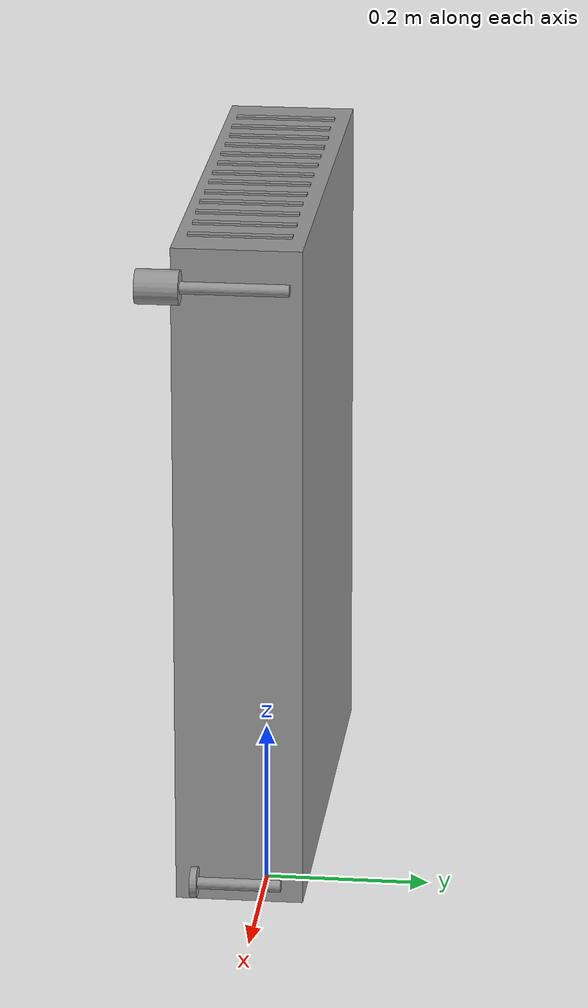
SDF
<?xml version='1.0'?>
<sdf version='1.7'>
  <model name='my_heater'>
    <link name='link'>
      <inertial>
        <mass>1</mass>
        <inertia>
          <ixx>0.166667</ixx>
          <ixy>0</ixy>
          <ixz>0</ixz>
          <iyy>0.166667</iyy>
          <iyz>0</iyz>
          <izz>0.166667</izz>
        </inertia>
        <pose>0 0 0 0 -0 0</pose>
      </inertial>
      <self_collide>0</self_collide>
      <enable_wind>0</enable_wind>
      <kinematic>0</kinematic>
      <pose>-0.005459 0 0 0 -0 0</pose>
      <gravity>1</gravity>
      <visual name='visual'>
        <geometry>
          <box>
            <size>0.6 0.15 0.8</size>
          </box>
        </geometry>
        <material>
          <script>
            <name>Gazebo/Grey</name>
            <uri>file://media/materials/scripts/gazebo.material</uri>
          </script>
          <shader type='pixel'>
            <normal_map>__default__</normal_map>
          </shader>
          <ambient>0.9 0.9 0.9 1</ambient>
          <diffuse>0.9 0.9 0.9 1</diffuse>
          <specular>0.01 0.01 0.01 1</specular>
          <emissive>0 0 0 1</emissive>
        </material>
        <pose>0 0 0.5 0 -0 0</pose>
        <transparency>0</transparency>
        <cast_shadows>1</cast_shadows>
      </visual>
      <collision name='collision'>
        <laser_retro>0</laser_retro>
        <max_contacts>10</max_contacts>
        <pose>0 0 0.5 0 -0 0</pose>
        <geometry>
          <box>
            <size>0.6 0.15 0.8</size>
          </box>
        </geometry>
        <surface>
          <friction>
            <ode>
              <mu>1</mu>
              <mu2>1</mu2>
              <fdir1>0 0 0</fdir1>
              <slip1>0</slip1>
              <slip2>0</slip2>
            </ode>
            <torsional>
              <coefficient>1</coefficient>
              <patch_radius>0</patch_radius>
              <surface_radius>0</surface_radius>
              <use_patch_radius>1</use_patch_radius>
              <ode>
                <slip>0</slip>
              </ode>
            </torsional>
          </friction>
          <bounce>
            <restitution_coefficient>0</restitution_coefficient>
            <threshold>1e+06</threshold>
          </bounce>
          <contact>
            <collide_without_contact>0</collide_without_contact>
            <collide_without_contact_bitmask>1</collide_without_contact_bitmask>
            <collide_bitmask>1</collide_bitmask>
            <ode>
              <soft_cfm>0</soft_cfm>
              <soft_erp>0.2</soft_erp>
              <kp>1e+13</kp>
              <kd>1</kd>
              <max_vel>0.01</max_vel>
              <min_depth>0</min_depth>
            </ode>
            <bullet>
              <split_impulse>1</split_impulse>
              <split_impulse_penetration_threshold>-0.01</split_impulse_penetration_threshold>
              <soft_cfm>0</soft_cfm>
              <soft_erp>0.2</soft_erp>
              <kp>1e+13</kp>
              <kd>1</kd>
            </bullet>
          </contact>
        </surface>
      </collision>
    </link>
    <link name='link_4'>
      <inertial>
        <mass>1</mass>
        <inertia>
          <ixx>0.145833</ixx>
          <ixy>0</ixy>
          <ixz>0</ixz>
          <iyy>0.145833</iyy>
          <iyz>0</iyz>
          <izz>0.125</izz>
        </inertia>
        <pose>0 0 0 0 -0 0</pose>
      </inertial>
      <pose>0.339437 -0.00976 0.367942 0 -0 0</pose>
      <gravity>1</gravity>
      <self_collide>0</self_collide>
      <kinematic>0</kinematic>
      <enable_wind>0</enable_wind>
      <visual name='visual'>
        <pose>0 0 0.5 1.5707 -0 0</pose>
        <geometry>
          <cylinder>
            <radius>0.007</radius>
            <length>0.15</length>
          </cylinder>
        </geometry>
        <material>
          <lighting>1</lighting>
          <script>
            <uri>file://media/materials/scripts/gazebo.material</uri>
            <name>Gazebo/Grey</name>
          </script>
          <shader type='pixel'>
            <normal_map>__default__</normal_map>
          </shader>
          <ambient>0.3 0.3 0.3 1</ambient>
          <diffuse>0.3 0.3 0.3 1</diffuse>
          <specular>0.01 0.01 0.01 1</specular>
          <emissive>0 0 0 1</emissive>
        </material>
        <transparency>0</transparency>
        <cast_shadows>1</cast_shadows>
      </visual>
      <collision name='collision'>
        <laser_retro>0</laser_retro>
        <max_contacts>10</max_contacts>
        <pose>0 0 0.5 1.5707 -0 0</pose>
        <geometry>
          <cylinder>
            <radius>0.007</radius>
            <length>0.15</length>
          </cylinder>
        </geometry>
        <surface>
          <friction>
            <ode>
              <mu>1</mu>
              <mu2>1</mu2>
              <fdir1>0 0 0</fdir1>
              <slip1>0</slip1>
              <slip2>0</slip2>
            </ode>
            <torsional>
              <coefficient>1</coefficient>
              <patch_radius>0</patch_radius>
              <surface_radius>0</surface_radius>
              <use_patch_radius>1</use_patch_radius>
              <ode>
                <slip>0</slip>
              </ode>
            </torsional>
          </friction>
          <bounce>
            <restitution_coefficient>0</restitution_coefficient>
            <threshold>1e+06</threshold>
          </bounce>
          <contact>
            <collide_without_contact>0</collide_without_contact>
            <collide_without_contact_bitmask>1</collide_without_contact_bitmask>
            <collide_bitmask>1</collide_bitmask>
            <ode>
              <soft_cfm>0</soft_cfm>
              <soft_erp>0.2</soft_erp>
              <kp>1e+13</kp>
              <kd>1</kd>
              <max_vel>0.01</max_vel>
              <min_depth>0</min_depth>
            </ode>
            <bullet>
              <split_impulse>1</split_impulse>
              <split_impulse_penetration_threshold>-0.01</split_impulse_penetration_threshold>
              <soft_cfm>0</soft_cfm>
              <soft_erp>0.2</soft_erp>
              <kp>1e+13</kp>
              <kd>1</kd>
            </bullet>
          </contact>
        </surface>
      </collision>
    </link>
    <link name='link_4_clone'>
      <inertial>
        <mass>1</mass>
        <inertia>
          <ixx>0.145833</ixx>
          <ixy>0</ixy>
          <ixz>0</ixz>
          <iyy>0.145833</iyy>
          <iyz>0</iyz>
          <izz>0.125</izz>
        </inertia>
        <pose>0 0 0 0 -0 0</pose>
      </inertial>
      <pose>0.338807 -0.083548 0.367942 0 -0 0</pose>
      <gravity>0</gravity>
      <self_collide>0</self_collide>
      <kinematic>0</kinematic>
      <enable_wind>0</enable_wind>
      <visual name='visual'>
        <pose>0 0 0.5 1.5707 -0 0</pose>
        <geometry>
          <cylinder>
            <radius>0.02</radius>
            <length>0.05</length>
          </cylinder>
        </geometry>
        <material>
          <lighting>1</lighting>
          <script>
            <uri>file://media/materials/scripts/gazebo.material</uri>
            <name>Gazebo/Grey</name>
          </script>
          <shader type='pixel'>
            <normal_map>__default__</normal_map>
          </shader>
          <ambient>0.9 0.9 0.9 1</ambient>
          <diffuse>0.9 0.9 0.9 1</diffuse>
          <specular>0.01 0.01 0.01 1</specular>
          <emissive>0 0 0 1</emissive>
        </material>
        <transparency>0</transparency>
        <cast_shadows>1</cast_shadows>
      </visual>
      <collision name='collision'>
        <laser_retro>0</laser_retro>
        <max_contacts>10</max_contacts>
        <pose>0 0 0.5 1.5707 -0 0</pose>
        <geometry>
          <cylinder>
            <radius>0.02</radius>
            <length>0.05</length>
          </cylinder>
        </geometry>
        <surface>
          <friction>
            <ode>
              <mu>1</mu>
              <mu2>1</mu2>
              <fdir1>0 0 0</fdir1>
              <slip1>0</slip1>
              <slip2>0</slip2>
            </ode>
            <torsional>
              <coefficient>1</coefficient>
              <patch_radius>0</patch_radius>
              <surface_radius>0</surface_radius>
              <use_patch_radius>1</use_patch_radius>
              <ode>
                <slip>0</slip>
              </ode>
            </torsional>
          </friction>
          <bounce>
            <restitution_coefficient>0</restitution_coefficient>
            <threshold>1e+06</threshold>
          </bounce>
          <contact>
            <collide_without_contact>0</collide_without_contact>
            <collide_without_contact_bitmask>1</collide_without_contact_bitmask>
            <collide_bitmask>1</collide_bitmask>
            <ode>
              <soft_cfm>0</soft_cfm>
              <soft_erp>0.2</soft_erp>
              <kp>1e+13</kp>
              <kd>1</kd>
              <max_vel>0.01</max_vel>
              <min_depth>0</min_depth>
            </ode>
            <bullet>
              <split_impulse>1</split_impulse>
              <split_impulse_penetration_threshold>-0.01</split_impulse_penetration_threshold>
              <soft_cfm>0</soft_cfm>
              <soft_erp>0.2</soft_erp>
              <kp>1e+13</kp>
              <kd>1</kd>
            </bullet>
          </contact>
        </surface>
      </collision>
    </link>
    <link name='link_4_clone_0'>
      <inertial>
        <mass>1</mass>
        <inertia>
          <ixx>0.145833</ixx>
          <ixy>0</ixy>
          <ixz>0</ixz>
          <iyy>0.145833</iyy>
          <iyz>0</iyz>
          <izz>0.125</izz>
        </inertia>
        <pose>0 0 0 0 -0 0</pose>
      </inertial>
      <pose>0.334138 0.003511 -0.362073 0 -0 0</pose>
      <gravity>1</gravity>
      <self_collide>0</self_collide>
      <kinematic>0</kinematic>
      <enable_wind>0</enable_wind>
      <visual name='visual'>
        <pose>0 0 0.5 1.5707 -0 0</pose>
        <geometry>
          <cylinder>
            <radius>0.007</radius>
            <length>0.1</length>
          </cylinder>
        </geometry>
        <material>
          <lighting>1</lighting>
          <script>
            <uri>file://media/materials/scripts/gazebo.material</uri>
            <name>Gazebo/Grey</name>
          </script>
          <shader type='pixel'>
            <normal_map>__default__</normal_map>
          </shader>
          <ambient>0.3 0.3 0.3 1</ambient>
          <diffuse>0.3 0.3 0.3 1</diffuse>
          <specular>0.01 0.01 0.01 1</specular>
          <emissive>0 0 0 1</emissive>
        </material>
        <transparency>0</transparency>
        <cast_shadows>1</cast_shadows>
      </visual>
      <collision name='collision'>
        <laser_retro>0</laser_retro>
        <max_contacts>10</max_contacts>
        <pose>0 0 0.5 1.5707 -0 0</pose>
        <geometry>
          <cylinder>
            <radius>0.008</radius>
            <length>0.08</length>
          </cylinder>
        </geometry>
        <surface>
          <friction>
            <ode>
              <mu>1</mu>
              <mu2>1</mu2>
              <fdir1>0 0 0</fdir1>
              <slip1>0</slip1>
              <slip2>0</slip2>
            </ode>
            <torsional>
              <coefficient>1</coefficient>
              <patch_radius>0</patch_radius>
              <surface_radius>0</surface_radius>
              <use_patch_radius>1</use_patch_radius>
              <ode>
                <slip>0</slip>
              </ode>
            </torsional>
          </friction>
          <bounce>
            <restitution_coefficient>0</restitution_coefficient>
            <threshold>1e+06</threshold>
          </bounce>
          <contact>
            <collide_without_contact>0</collide_without_contact>
            <collide_without_contact_bitmask>1</collide_without_contact_bitmask>
            <collide_bitmask>1</collide_bitmask>
            <ode>
              <soft_cfm>0</soft_cfm>
              <soft_erp>0.2</soft_erp>
              <kp>1e+13</kp>
              <kd>1</kd>
              <max_vel>0.01</max_vel>
              <min_depth>0</min_depth>
            </ode>
            <bullet>
              <split_impulse>1</split_impulse>
              <split_impulse_penetration_threshold>-0.01</split_impulse_penetration_threshold>
              <soft_cfm>0</soft_cfm>
              <soft_erp>0.2</soft_erp>
              <kp>1e+13</kp>
              <kd>1</kd>
            </bullet>
          </contact>
        </surface>
      </collision>
    </link>
    <link name='link_4_clone_1'>
      <inertial>
        <mass>1</mass>
        <inertia>
          <ixx>0.145833</ixx>
          <ixy>0</ixy>
          <ixz>0</ixz>
          <iyy>0.145833</iyy>
          <iyz>0</iyz>
          <izz>0.125</izz>
        </inertia>
        <pose>0 0 0 0 -0 0</pose>
      </inertial>
      <pose>0.334332 -0.048218 -0.360984 0 -0 0</pose>
      <gravity>1</gravity>
      <self_collide>0</self_collide>
      <kinematic>0</kinematic>
      <enable_wind>0</enable_wind>
      <visual name='visual'>
        <pose>0 0 0.5 1.5707 -0 0</pose>
        <geometry>
          <cylinder>
            <radius>0.018</radius>
            <length>0.008</length>
          </cylinder>
        </geometry>
        <material>
          <lighting>1</lighting>
          <script>
            <uri>file://media/materials/scripts/gazebo.material</uri>
            <name>Gazebo/Grey</name>
          </script>
          <shader type='pixel'>
            <normal_map>__default__</normal_map>
          </shader>
          <ambient>0.3 0.3 0.3 1</ambient>
          <diffuse>0.3 0.3 0.3 1</diffuse>
          <specular>0.01 0.01 0.01 1</specular>
          <emissive>0 0 0 1</emissive>
        </material>
        <transparency>0</transparency>
        <cast_shadows>1</cast_shadows>
      </visual>
      <collision name='collision'>
        <laser_retro>0</laser_retro>
        <max_contacts>10</max_contacts>
        <pose>0 0 0.5 1.5707 -0 0</pose>
        <geometry>
          <cylinder>
            <radius>0.018</radius>
            <length>0.01</length>
          </cylinder>
        </geometry>
        <surface>
          <friction>
            <ode>
              <mu>1</mu>
              <mu2>1</mu2>
              <fdir1>0 0 0</fdir1>
              <slip1>0</slip1>
              <slip2>0</slip2>
            </ode>
            <torsional>
              <coefficient>1</coefficient>
              <patch_radius>0</patch_radius>
              <surface_radius>0</surface_radius>
              <use_patch_radius>1</use_patch_radius>
              <ode>
                <slip>0</slip>
              </ode>
            </torsional>
          </friction>
          <bounce>
            <restitution_coefficient>0</restitution_coefficient>
            <threshold>1e+06</threshold>
          </bounce>
          <contact>
            <collide_without_contact>0</collide_without_contact>
            <collide_without_contact_bitmask>1</collide_without_contact_bitmask>
            <collide_bitmask>1</collide_bitmask>
            <ode>
              <soft_cfm>0</soft_cfm>
              <soft_erp>0.2</soft_erp>
              <kp>1e+13</kp>
              <kd>1</kd>
              <max_vel>0.01</max_vel>
              <min_depth>0</min_depth>
            </ode>
            <bullet>
              <split_impulse>1</split_impulse>
              <split_impulse_penetration_threshold>-0.01</split_impulse_penetration_threshold>
              <soft_cfm>0</soft_cfm>
              <soft_erp>0.2</soft_erp>
              <kp>1e+13</kp>
              <kd>1</kd>
            </bullet>
          </contact>
        </surface>
      </collision>
    </link>
    <link name='link_clone'>
      <inertial>
        <mass>1</mass>
        <inertia>
          <ixx>0.166667</ixx>
          <ixy>0</ixy>
          <ixz>0</ixz>
          <iyy>0.166667</iyy>
          <iyz>0</iyz>
          <izz>0.166667</izz>
        </inertia>
        <pose>0 0 0 0 -0 0</pose>
      </inertial>
      <self_collide>0</self_collide>
      <enable_wind>0</enable_wind>
      <kinematic>0</kinematic>
      <pose>-0.008101 -0.003197 -0 0 -0 0</pose>
      <gravity>0</gravity>
      <visual name='visual'>
        <geometry>
          <box>
            <size>0.01 0.12 0.005</size>
          </box>
        </geometry>
        <material>
          <script>
            <name>Gazebo/Grey</name>
            <uri>file://media/materials/scripts/gazebo.material</uri>
          </script>
          <shader type='pixel'>
            <normal_map>__default__</normal_map>
          </shader>
          <ambient>0.2 0.2 0.2 1</ambient>
          <diffuse>0.2 0.2 0.2 1</diffuse>
          <specular>0.01 0.01 0.01 1</specular>
          <emissive>0 0 0 1</emissive>
        </material>
        <pose>0 0 0.9 0 -0 0</pose>
        <transparency>0</transparency>
        <cast_shadows>1</cast_shadows>
      </visual>
      <collision name='collision'>
        <laser_retro>0</laser_retro>
        <max_contacts>10</max_contacts>
        <pose>0 0 0.9 0 -0 0</pose>
        <geometry>
          <box>
            <size>0.01 0.12 0.005</size>
          </box>
        </geometry>
        <surface>
          <friction>
            <ode>
              <mu>1</mu>
              <mu2>1</mu2>
              <fdir1>0 0 0</fdir1>
              <slip1>0</slip1>
              <slip2>0</slip2>
            </ode>
            <torsional>
              <coefficient>1</coefficient>
              <patch_radius>0</patch_radius>
              <surface_radius>0</surface_radius>
              <use_patch_radius>1</use_patch_radius>
              <ode>
                <slip>0</slip>
              </ode>
            </torsional>
          </friction>
          <bounce>
            <restitution_coefficient>0</restitution_coefficient>
            <threshold>1e+06</threshold>
          </bounce>
          <contact>
            <collide_without_contact>0</collide_without_contact>
            <collide_without_contact_bitmask>1</collide_without_contact_bitmask>
            <collide_bitmask>1</collide_bitmask>
            <ode>
              <soft_cfm>0</soft_cfm>
              <soft_erp>0.2</soft_erp>
              <kp>1e+13</kp>
              <kd>1</kd>
              <max_vel>0.01</max_vel>
              <min_depth>0</min_depth>
            </ode>
            <bullet>
              <split_impulse>1</split_impulse>
              <split_impulse_penetration_threshold>-0.01</split_impulse_penetration_threshold>
              <soft_cfm>0</soft_cfm>
              <soft_erp>0.2</soft_erp>
              <kp>1e+13</kp>
              <kd>1</kd>
            </bullet>
          </contact>
        </surface>
      </collision>
    </link>
    <link name='link_clone_clone'>
      <inertial>
        <mass>1</mass>
        <inertia>
          <ixx>0.166667</ixx>
          <ixy>0</ixy>
          <ixz>0</ixz>
          <iyy>0.166667</iyy>
          <iyz>0</iyz>
          <izz>0.166667</izz>
        </inertia>
        <pose>0 0 0 0 -0 0</pose>
      </inertial>
      <self_collide>0</self_collide>
      <enable_wind>0</enable_wind>
      <kinematic>0</kinematic>
      <pose>0.030621 -0.003096 -0 0 -0 0</pose>
      <gravity>0</gravity>
      <visual name='visual'>
        <geometry>
          <box>
            <size>0.01 0.12 0.005</size>
          </box>
        </geometry>
        <material>
          <script>
            <name>Gazebo/Grey</name>
            <uri>file://media/materials/scripts/gazebo.material</uri>
          </script>
          <shader type='pixel'>
            <normal_map>__default__</normal_map>
          </shader>
          <ambient>0.2 0.2 0.2 1</ambient>
          <diffuse>0.2 0.2 0.2 1</diffuse>
          <specular>0.01 0.01 0.01 1</specular>
          <emissive>0 0 0 1</emissive>
        </material>
        <pose>0 0 0.9 0 -0 0</pose>
        <transparency>0</transparency>
        <cast_shadows>1</cast_shadows>
      </visual>
      <collision name='collision'>
        <laser_retro>0</laser_retro>
        <max_contacts>10</max_contacts>
        <pose>0 0 0.9 0 -0 0</pose>
        <geometry>
          <box>
            <size>0.01 0.12 0.005</size>
          </box>
        </geometry>
        <surface>
          <friction>
            <ode>
              <mu>1</mu>
              <mu2>1</mu2>
              <fdir1>0 0 0</fdir1>
              <slip1>0</slip1>
              <slip2>0</slip2>
            </ode>
            <torsional>
              <coefficient>1</coefficient>
              <patch_radius>0</patch_radius>
              <surface_radius>0</surface_radius>
              <use_patch_radius>1</use_patch_radius>
              <ode>
                <slip>0</slip>
              </ode>
            </torsional>
          </friction>
          <bounce>
            <restitution_coefficient>0</restitution_coefficient>
            <threshold>1e+06</threshold>
          </bounce>
          <contact>
            <collide_without_contact>0</collide_without_contact>
            <collide_without_contact_bitmask>1</collide_without_contact_bitmask>
            <collide_bitmask>1</collide_bitmask>
            <ode>
              <soft_cfm>0</soft_cfm>
              <soft_erp>0.2</soft_erp>
              <kp>1e+13</kp>
              <kd>1</kd>
              <max_vel>0.01</max_vel>
              <min_depth>0</min_depth>
            </ode>
            <bullet>
              <split_impulse>1</split_impulse>
              <split_impulse_penetration_threshold>-0.01</split_impulse_penetration_threshold>
              <soft_cfm>0</soft_cfm>
              <soft_erp>0.2</soft_erp>
              <kp>1e+13</kp>
              <kd>1</kd>
            </bullet>
          </contact>
        </surface>
      </collision>
    </link>
    <link name='link_clone_clone_0'>
      <inertial>
        <mass>1</mass>
        <inertia>
          <ixx>0.166667</ixx>
          <ixy>0</ixy>
          <ixz>0</ixz>
          <iyy>0.166667</iyy>
          <iyz>0</iyz>
          <izz>0.166667</izz>
        </inertia>
        <pose>0 0 0 0 -0 0</pose>
      </inertial>
      <self_collide>0</self_collide>
      <enable_wind>0</enable_wind>
      <kinematic>0</kinematic>
      <pose>-0.127469 -0.002742 0 0 -0 0</pose>
      <gravity>0</gravity>
      <visual name='visual'>
        <geometry>
          <box>
            <size>0.01 0.12 0.005</size>
          </box>
        </geometry>
        <material>
          <script>
            <name>Gazebo/Grey</name>
            <uri>file://media/materials/scripts/gazebo.material</uri>
          </script>
          <shader type='pixel'>
            <normal_map>__default__</normal_map>
          </shader>
          <ambient>0.2 0.2 0.2 1</ambient>
          <diffuse>0.2 0.2 0.2 1</diffuse>
          <specular>0.01 0.01 0.01 1</specular>
          <emissive>0 0 0 1</emissive>
        </material>
        <pose>0 0 0.9 0 -0 0</pose>
        <transparency>0</transparency>
        <cast_shadows>1</cast_shadows>
      </visual>
      <collision name='collision'>
        <laser_retro>0</laser_retro>
        <max_contacts>10</max_contacts>
        <pose>0 0 0.9 0 -0 0</pose>
        <geometry>
          <box>
            <size>0.01 0.12 0.005</size>
          </box>
        </geometry>
        <surface>
          <friction>
            <ode>
              <mu>1</mu>
              <mu2>1</mu2>
              <fdir1>0 0 0</fdir1>
              <slip1>0</slip1>
              <slip2>0</slip2>
            </ode>
            <torsional>
              <coefficient>1</coefficient>
              <patch_radius>0</patch_radius>
              <surface_radius>0</surface_radius>
              <use_patch_radius>1</use_patch_radius>
              <ode>
                <slip>0</slip>
              </ode>
            </torsional>
          </friction>
          <bounce>
            <restitution_coefficient>0</restitution_coefficient>
            <threshold>1e+06</threshold>
          </bounce>
          <contact>
            <collide_without_contact>0</collide_without_contact>
            <collide_without_contact_bitmask>1</collide_without_contact_bitmask>
            <collide_bitmask>1</collide_bitmask>
            <ode>
              <soft_cfm>0</soft_cfm>
              <soft_erp>0.2</soft_erp>
              <kp>1e+13</kp>
              <kd>1</kd>
              <max_vel>0.01</max_vel>
              <min_depth>0</min_depth>
            </ode>
            <bullet>
              <split_impulse>1</split_impulse>
              <split_impulse_penetration_threshold>-0.01</split_impulse_penetration_threshold>
              <soft_cfm>0</soft_cfm>
              <soft_erp>0.2</soft_erp>
              <kp>1e+13</kp>
              <kd>1</kd>
            </bullet>
          </contact>
        </surface>
      </collision>
    </link>
    <link name='link_clone_clone_1'>
      <inertial>
        <mass>1</mass>
        <inertia>
          <ixx>0.166667</ixx>
          <ixy>0</ixy>
          <ixz>0</ixz>
          <iyy>0.166667</iyy>
          <iyz>0</iyz>
          <izz>0.166667</izz>
        </inertia>
        <pose>0 0 0 0 -0 0</pose>
      </inertial>
      <self_collide>0</self_collide>
      <enable_wind>0</enable_wind>
      <kinematic>0</kinematic>
      <pose>-0.04814 -0.002331 -0 0 -0 0</pose>
      <gravity>0</gravity>
      <visual name='visual'>
        <geometry>
          <box>
            <size>0.01 0.12 0.005</size>
          </box>
        </geometry>
        <material>
          <script>
            <name>Gazebo/Grey</name>
            <uri>file://media/materials/scripts/gazebo.material</uri>
          </script>
          <shader type='pixel'>
            <normal_map>__default__</normal_map>
          </shader>
          <ambient>0.2 0.2 0.2 1</ambient>
          <diffuse>0.2 0.2 0.2 1</diffuse>
          <specular>0.01 0.01 0.01 1</specular>
          <emissive>0 0 0 1</emissive>
        </material>
        <pose>0 0 0.9 0 -0 0</pose>
        <transparency>0</transparency>
        <cast_shadows>1</cast_shadows>
      </visual>
      <collision name='collision'>
        <laser_retro>0</laser_retro>
        <max_contacts>10</max_contacts>
        <pose>0 0 0.9 0 -0 0</pose>
        <geometry>
          <box>
            <size>0.01 0.12 0.005</size>
          </box>
        </geometry>
        <surface>
          <friction>
            <ode>
              <mu>1</mu>
              <mu2>1</mu2>
              <fdir1>0 0 0</fdir1>
              <slip1>0</slip1>
              <slip2>0</slip2>
            </ode>
            <torsional>
              <coefficient>1</coefficient>
              <patch_radius>0</patch_radius>
              <surface_radius>0</surface_radius>
              <use_patch_radius>1</use_patch_radius>
              <ode>
                <slip>0</slip>
              </ode>
            </torsional>
          </friction>
          <bounce>
            <restitution_coefficient>0</restitution_coefficient>
            <threshold>1e+06</threshold>
          </bounce>
          <contact>
            <collide_without_contact>0</collide_without_contact>
            <collide_without_contact_bitmask>1</collide_without_contact_bitmask>
            <collide_bitmask>1</collide_bitmask>
            <ode>
              <soft_cfm>0</soft_cfm>
              <soft_erp>0.2</soft_erp>
              <kp>1e+13</kp>
              <kd>1</kd>
              <max_vel>0.01</max_vel>
              <min_depth>0</min_depth>
            </ode>
            <bullet>
              <split_impulse>1</split_impulse>
              <split_impulse_penetration_threshold>-0.01</split_impulse_penetration_threshold>
              <soft_cfm>0</soft_cfm>
              <soft_erp>0.2</soft_erp>
              <kp>1e+13</kp>
              <kd>1</kd>
            </bullet>
          </contact>
        </surface>
      </collision>
    </link>
    <link name='link_clone_clone_2'>
      <inertial>
        <mass>1</mass>
        <inertia>
          <ixx>0.166667</ixx>
          <ixy>0</ixy>
          <ixz>0</ixz>
          <iyy>0.166667</iyy>
          <iyz>0</iyz>
          <izz>0.166667</izz>
        </inertia>
        <pose>0 0 0 0 -0 0</pose>
      </inertial>
      <self_collide>0</self_collide>
      <enable_wind>0</enable_wind>
      <kinematic>0</kinematic>
      <pose>-0.087785 -0.003069 0 0 -0 0</pose>
      <gravity>0</gravity>
      <visual name='visual'>
        <geometry>
          <box>
            <size>0.01 0.12 0.005</size>
          </box>
        </geometry>
        <material>
          <script>
            <name>Gazebo/Grey</name>
            <uri>file://media/materials/scripts/gazebo.material</uri>
          </script>
          <shader type='pixel'>
            <normal_map>__default__</normal_map>
          </shader>
          <ambient>0.2 0.2 0.2 1</ambient>
          <diffuse>0.2 0.2 0.2 1</diffuse>
          <specular>0.01 0.01 0.01 1</specular>
          <emissive>0 0 0 1</emissive>
        </material>
        <pose>0 0 0.9 0 -0 0</pose>
        <transparency>0</transparency>
        <cast_shadows>1</cast_shadows>
      </visual>
      <collision name='collision'>
        <laser_retro>0</laser_retro>
        <max_contacts>10</max_contacts>
        <pose>0 0 0.9 0 -0 0</pose>
        <geometry>
          <box>
            <size>0.01 0.12 0.005</size>
          </box>
        </geometry>
        <surface>
          <friction>
            <ode>
              <mu>1</mu>
              <mu2>1</mu2>
              <fdir1>0 0 0</fdir1>
              <slip1>0</slip1>
              <slip2>0</slip2>
            </ode>
            <torsional>
              <coefficient>1</coefficient>
              <patch_radius>0</patch_radius>
              <surface_radius>0</surface_radius>
              <use_patch_radius>1</use_patch_radius>
              <ode>
                <slip>0</slip>
              </ode>
            </torsional>
          </friction>
          <bounce>
            <restitution_coefficient>0</restitution_coefficient>
            <threshold>1e+06</threshold>
          </bounce>
          <contact>
            <collide_without_contact>0</collide_without_contact>
            <collide_without_contact_bitmask>1</collide_without_contact_bitmask>
            <collide_bitmask>1</collide_bitmask>
            <ode>
              <soft_cfm>0</soft_cfm>
              <soft_erp>0.2</soft_erp>
              <kp>1e+13</kp>
              <kd>1</kd>
              <max_vel>0.01</max_vel>
              <min_depth>0</min_depth>
            </ode>
            <bullet>
              <split_impulse>1</split_impulse>
              <split_impulse_penetration_threshold>-0.01</split_impulse_penetration_threshold>
              <soft_cfm>0</soft_cfm>
              <soft_erp>0.2</soft_erp>
              <kp>1e+13</kp>
              <kd>1</kd>
            </bullet>
          </contact>
        </surface>
      </collision>
    </link>
    <link name='link_clone_clone_3'>
      <inertial>
        <mass>1</mass>
        <inertia>
          <ixx>0.166667</ixx>
          <ixy>0</ixy>
          <ixz>0</ixz>
          <iyy>0.166667</iyy>
          <iyz>0</iyz>
          <izz>0.166667</izz>
        </inertia>
        <pose>0 0 0 0 -0 0</pose>
      </inertial>
      <self_collide>0</self_collide>
      <enable_wind>0</enable_wind>
      <kinematic>0</kinematic>
      <pose>-0.16726 -0.001899 -0 0 -0 0</pose>
      <gravity>0</gravity>
      <visual name='visual'>
        <geometry>
          <box>
            <size>0.01 0.12 0.005</size>
          </box>
        </geometry>
        <material>
          <script>
            <name>Gazebo/Grey</name>
            <uri>file://media/materials/scripts/gazebo.material</uri>
          </script>
          <shader type='pixel'>
            <normal_map>__default__</normal_map>
          </shader>
          <ambient>0.2 0.2 0.2 1</ambient>
          <diffuse>0.2 0.2 0.2 1</diffuse>
          <specular>0.01 0.01 0.01 1</specular>
          <emissive>0 0 0 1</emissive>
        </material>
        <pose>0 0 0.9 0 -0 0</pose>
        <transparency>0</transparency>
        <cast_shadows>1</cast_shadows>
      </visual>
      <collision name='collision'>
        <laser_retro>0</laser_retro>
        <max_contacts>10</max_contacts>
        <pose>0 0 0.9 0 -0 0</pose>
        <geometry>
          <box>
            <size>0.01 0.12 0.005</size>
          </box>
        </geometry>
        <surface>
          <friction>
            <ode>
              <mu>1</mu>
              <mu2>1</mu2>
              <fdir1>0 0 0</fdir1>
              <slip1>0</slip1>
              <slip2>0</slip2>
            </ode>
            <torsional>
              <coefficient>1</coefficient>
              <patch_radius>0</patch_radius>
              <surface_radius>0</surface_radius>
              <use_patch_radius>1</use_patch_radius>
              <ode>
                <slip>0</slip>
              </ode>
            </torsional>
          </friction>
          <bounce>
            <restitution_coefficient>0</restitution_coefficient>
            <threshold>1e+06</threshold>
          </bounce>
          <contact>
            <collide_without_contact>0</collide_without_contact>
            <collide_without_contact_bitmask>1</collide_without_contact_bitmask>
            <collide_bitmask>1</collide_bitmask>
            <ode>
              <soft_cfm>0</soft_cfm>
              <soft_erp>0.2</soft_erp>
              <kp>1e+13</kp>
              <kd>1</kd>
              <max_vel>0.01</max_vel>
              <min_depth>0</min_depth>
            </ode>
            <bullet>
              <split_impulse>1</split_impulse>
              <split_impulse_penetration_threshold>-0.01</split_impulse_penetration_threshold>
              <soft_cfm>0</soft_cfm>
              <soft_erp>0.2</soft_erp>
              <kp>1e+13</kp>
              <kd>1</kd>
            </bullet>
          </contact>
        </surface>
      </collision>
    </link>
    <link name='link_clone_clone_3_clone'>
      <inertial>
        <mass>1</mass>
        <inertia>
          <ixx>0.166667</ixx>
          <ixy>0</ixy>
          <ixz>0</ixz>
          <iyy>0.166667</iyy>
          <iyz>0</iyz>
          <izz>0.166667</izz>
        </inertia>
        <pose>0 0 0 0 -0 0</pose>
      </inertial>
      <self_collide>0</self_collide>
      <enable_wind>0</enable_wind>
      <kinematic>0</kinematic>
      <pose>-0.208169 -0.004009 0 0 -0 0</pose>
      <gravity>0</gravity>
      <visual name='visual'>
        <geometry>
          <box>
            <size>0.01 0.12 0.005</size>
          </box>
        </geometry>
        <material>
          <script>
            <name>Gazebo/Grey</name>
            <uri>file://media/materials/scripts/gazebo.material</uri>
          </script>
          <shader type='pixel'>
            <normal_map>__default__</normal_map>
          </shader>
          <ambient>0.2 0.2 0.2 1</ambient>
          <diffuse>0.2 0.2 0.2 1</diffuse>
          <specular>0.01 0.01 0.01 1</specular>
          <emissive>0 0 0 1</emissive>
        </material>
        <pose>0 0 0.9 0 -0 0</pose>
        <transparency>0</transparency>
        <cast_shadows>1</cast_shadows>
      </visual>
      <collision name='collision'>
        <laser_retro>0</laser_retro>
        <max_contacts>10</max_contacts>
        <pose>0 0 0.9 0 -0 0</pose>
        <geometry>
          <box>
            <size>0.01 0.12 0.005</size>
          </box>
        </geometry>
        <surface>
          <friction>
            <ode>
              <mu>1</mu>
              <mu2>1</mu2>
              <fdir1>0 0 0</fdir1>
              <slip1>0</slip1>
              <slip2>0</slip2>
            </ode>
            <torsional>
              <coefficient>1</coefficient>
              <patch_radius>0</patch_radius>
              <surface_radius>0</surface_radius>
              <use_patch_radius>1</use_patch_radius>
              <ode>
                <slip>0</slip>
              </ode>
            </torsional>
          </friction>
          <bounce>
            <restitution_coefficient>0</restitution_coefficient>
            <threshold>1e+06</threshold>
          </bounce>
          <contact>
            <collide_without_contact>0</collide_without_contact>
            <collide_without_contact_bitmask>1</collide_without_contact_bitmask>
            <collide_bitmask>1</collide_bitmask>
            <ode>
              <soft_cfm>0</soft_cfm>
              <soft_erp>0.2</soft_erp>
              <kp>1e+13</kp>
              <kd>1</kd>
              <max_vel>0.01</max_vel>
              <min_depth>0</min_depth>
            </ode>
            <bullet>
              <split_impulse>1</split_impulse>
              <split_impulse_penetration_threshold>-0.01</split_impulse_penetration_threshold>
              <soft_cfm>0</soft_cfm>
              <soft_erp>0.2</soft_erp>
              <kp>1e+13</kp>
              <kd>1</kd>
            </bullet>
          </contact>
        </surface>
      </collision>
    </link>
    <link name='link_clone_clone_3_clone_clone'>
      <inertial>
        <mass>1</mass>
        <inertia>
          <ixx>0.166667</ixx>
          <ixy>0</ixy>
          <ixz>0</ixz>
          <iyy>0.166667</iyy>
          <iyz>0</iyz>
          <izz>0.166667</izz>
        </inertia>
        <pose>0 0 0 0 -0 0</pose>
      </inertial>
      <self_collide>0</self_collide>
      <enable_wind>0</enable_wind>
      <kinematic>0</kinematic>
      <pose>-0.251481 -0.002582 -0 0 -0 0</pose>
      <gravity>0</gravity>
      <visual name='visual'>
        <geometry>
          <box>
            <size>0.01 0.12 0.005</size>
          </box>
        </geometry>
        <material>
          <script>
            <name>Gazebo/Grey</name>
            <uri>file://media/materials/scripts/gazebo.material</uri>
          </script>
          <shader type='pixel'>
            <normal_map>__default__</normal_map>
          </shader>
          <ambient>0.2 0.2 0.2 1</ambient>
          <diffuse>0.2 0.2 0.2 1</diffuse>
          <specular>0.01 0.01 0.01 1</specular>
          <emissive>0 0 0 1</emissive>
        </material>
        <pose>0 0 0.9 0 -0 0</pose>
        <transparency>0</transparency>
        <cast_shadows>1</cast_shadows>
      </visual>
      <collision name='collision'>
        <laser_retro>0</laser_retro>
        <max_contacts>10</max_contacts>
        <pose>0 0 0.9 0 -0 0</pose>
        <geometry>
          <box>
            <size>0.01 0.12 0.005</size>
          </box>
        </geometry>
        <surface>
          <friction>
            <ode>
              <mu>1</mu>
              <mu2>1</mu2>
              <fdir1>0 0 0</fdir1>
              <slip1>0</slip1>
              <slip2>0</slip2>
            </ode>
            <torsional>
              <coefficient>1</coefficient>
              <patch_radius>0</patch_radius>
              <surface_radius>0</surface_radius>
              <use_patch_radius>1</use_patch_radius>
              <ode>
                <slip>0</slip>
              </ode>
            </torsional>
          </friction>
          <bounce>
            <restitution_coefficient>0</restitution_coefficient>
            <threshold>1e+06</threshold>
          </bounce>
          <contact>
            <collide_without_contact>0</collide_without_contact>
            <collide_without_contact_bitmask>1</collide_without_contact_bitmask>
            <collide_bitmask>1</collide_bitmask>
            <ode>
              <soft_cfm>0</soft_cfm>
              <soft_erp>0.2</soft_erp>
              <kp>1e+13</kp>
              <kd>1</kd>
              <max_vel>0.01</max_vel>
              <min_depth>0</min_depth>
            </ode>
            <bullet>
              <split_impulse>1</split_impulse>
              <split_impulse_penetration_threshold>-0.01</split_impulse_penetration_threshold>
              <soft_cfm>0</soft_cfm>
              <soft_erp>0.2</soft_erp>
              <kp>1e+13</kp>
              <kd>1</kd>
            </bullet>
          </contact>
        </surface>
      </collision>
    </link>
    <link name='link_clone_clone_3_clone_clone_0'>
      <inertial>
        <mass>1</mass>
        <inertia>
          <ixx>0.166667</ixx>
          <ixy>0</ixy>
          <ixz>0</ixz>
          <iyy>0.166667</iyy>
          <iyz>0</iyz>
          <izz>0.166667</izz>
        </inertia>
        <pose>0 0 0 0 -0 0</pose>
      </inertial>
      <self_collide>0</self_collide>
      <enable_wind>0</enable_wind>
      <kinematic>0</kinematic>
      <pose>0.0726 -0.002837 0 0 -0 0</pose>
      <gravity>0</gravity>
      <visual name='visual'>
        <geometry>
          <box>
            <size>0.01 0.12 0.005</size>
          </box>
        </geometry>
        <material>
          <script>
            <name>Gazebo/Grey</name>
            <uri>file://media/materials/scripts/gazebo.material</uri>
          </script>
          <shader type='pixel'>
            <normal_map>__default__</normal_map>
          </shader>
          <ambient>0.2 0.2 0.2 1</ambient>
          <diffuse>0.2 0.2 0.2 1</diffuse>
          <specular>0.01 0.01 0.01 1</specular>
          <emissive>0 0 0 1</emissive>
        </material>
        <pose>0 0 0.9 0 -0 0</pose>
        <transparency>0</transparency>
        <cast_shadows>1</cast_shadows>
      </visual>
      <collision name='collision'>
        <laser_retro>0</laser_retro>
        <max_contacts>10</max_contacts>
        <pose>0 0 0.9 0 -0 0</pose>
        <geometry>
          <box>
            <size>0.01 0.12 0.005</size>
          </box>
        </geometry>
        <surface>
          <friction>
            <ode>
              <mu>1</mu>
              <mu2>1</mu2>
              <fdir1>0 0 0</fdir1>
              <slip1>0</slip1>
              <slip2>0</slip2>
            </ode>
            <torsional>
              <coefficient>1</coefficient>
              <patch_radius>0</patch_radius>
              <surface_radius>0</surface_radius>
              <use_patch_radius>1</use_patch_radius>
              <ode>
                <slip>0</slip>
              </ode>
            </torsional>
          </friction>
          <bounce>
            <restitution_coefficient>0</restitution_coefficient>
            <threshold>1e+06</threshold>
          </bounce>
          <contact>
            <collide_without_contact>0</collide_without_contact>
            <collide_without_contact_bitmask>1</collide_without_contact_bitmask>
            <collide_bitmask>1</collide_bitmask>
            <ode>
              <soft_cfm>0</soft_cfm>
              <soft_erp>0.2</soft_erp>
              <kp>1e+13</kp>
              <kd>1</kd>
              <max_vel>0.01</max_vel>
              <min_depth>0</min_depth>
            </ode>
            <bullet>
              <split_impulse>1</split_impulse>
              <split_impulse_penetration_threshold>-0.01</split_impulse_penetration_threshold>
              <soft_cfm>0</soft_cfm>
              <soft_erp>0.2</soft_erp>
              <kp>1e+13</kp>
              <kd>1</kd>
            </bullet>
          </contact>
        </surface>
      </collision>
    </link>
    <link name='link_clone_clone_3_clone_clone_1'>
      <inertial>
        <mass>1</mass>
        <inertia>
          <ixx>0.166667</ixx>
          <ixy>0</ixy>
          <ixz>0</ixz>
          <iyy>0.166667</iyy>
          <iyz>0</iyz>
          <izz>0.166667</izz>
        </inertia>
        <pose>0 0 0 0 -0 0</pose>
      </inertial>
      <self_collide>0</self_collide>
      <enable_wind>0</enable_wind>
      <kinematic>0</kinematic>
      <pose>0.242123 -0.001489 0 0 -0 0</pose>
      <gravity>0</gravity>
      <visual name='visual'>
        <geometry>
          <box>
            <size>0.01 0.12 0.005</size>
          </box>
        </geometry>
        <material>
          <script>
            <name>Gazebo/Grey</name>
            <uri>file://media/materials/scripts/gazebo.material</uri>
          </script>
          <shader type='pixel'>
            <normal_map>__default__</normal_map>
          </shader>
          <ambient>0.2 0.2 0.2 1</ambient>
          <diffuse>0.2 0.2 0.2 1</diffuse>
          <specular>0.01 0.01 0.01 1</specular>
          <emissive>0 0 0 1</emissive>
        </material>
        <pose>0 0 0.9 0 -0 0</pose>
        <transparency>0</transparency>
        <cast_shadows>1</cast_shadows>
      </visual>
      <collision name='collision'>
        <laser_retro>0</laser_retro>
        <max_contacts>10</max_contacts>
        <pose>0 0 0.9 0 -0 0</pose>
        <geometry>
          <box>
            <size>0.01 0.12 0.005</size>
          </box>
        </geometry>
        <surface>
          <friction>
            <ode>
              <mu>1</mu>
              <mu2>1</mu2>
              <fdir1>0 0 0</fdir1>
              <slip1>0</slip1>
              <slip2>0</slip2>
            </ode>
            <torsional>
              <coefficient>1</coefficient>
              <patch_radius>0</patch_radius>
              <surface_radius>0</surface_radius>
              <use_patch_radius>1</use_patch_radius>
              <ode>
                <slip>0</slip>
              </ode>
            </torsional>
          </friction>
          <bounce>
            <restitution_coefficient>0</restitution_coefficient>
            <threshold>1e+06</threshold>
          </bounce>
          <contact>
            <collide_without_contact>0</collide_without_contact>
            <collide_without_contact_bitmask>1</collide_without_contact_bitmask>
            <collide_bitmask>1</collide_bitmask>
            <ode>
              <soft_cfm>0</soft_cfm>
              <soft_erp>0.2</soft_erp>
              <kp>1e+13</kp>
              <kd>1</kd>
              <max_vel>0.01</max_vel>
              <min_depth>0</min_depth>
            </ode>
            <bullet>
              <split_impulse>1</split_impulse>
              <split_impulse_penetration_threshold>-0.01</split_impulse_penetration_threshold>
              <soft_cfm>0</soft_cfm>
              <soft_erp>0.2</soft_erp>
              <kp>1e+13</kp>
              <kd>1</kd>
            </bullet>
          </contact>
        </surface>
      </collision>
    </link>
    <link name='link_clone_clone_3_clone_clone_2'>
      <inertial>
        <mass>1</mass>
        <inertia>
          <ixx>0.166667</ixx>
          <ixy>0</ixy>
          <ixz>0</ixz>
          <iyy>0.166667</iyy>
          <iyz>0</iyz>
          <izz>0.166667</izz>
        </inertia>
        <pose>0 0 0 0 -0 0</pose>
      </inertial>
      <self_collide>0</self_collide>
      <enable_wind>0</enable_wind>
      <kinematic>0</kinematic>
      <pose>0.11177 -0.003627 -0 0 -0 0</pose>
      <gravity>0</gravity>
      <visual name='visual'>
        <geometry>
          <box>
            <size>0.01 0.12 0.005</size>
          </box>
        </geometry>
        <material>
          <script>
            <name>Gazebo/Grey</name>
            <uri>file://media/materials/scripts/gazebo.material</uri>
          </script>
          <shader type='pixel'>
            <normal_map>__default__</normal_map>
          </shader>
          <ambient>0.2 0.2 0.2 1</ambient>
          <diffuse>0.2 0.2 0.2 1</diffuse>
          <specular>0.01 0.01 0.01 1</specular>
          <emissive>0 0 0 1</emissive>
        </material>
        <pose>0 0 0.9 0 -0 0</pose>
        <transparency>0</transparency>
        <cast_shadows>1</cast_shadows>
      </visual>
      <collision name='collision'>
        <laser_retro>0</laser_retro>
        <max_contacts>10</max_contacts>
        <pose>0 0 0.9 0 -0 0</pose>
        <geometry>
          <box>
            <size>0.01 0.12 0.005</size>
          </box>
        </geometry>
        <surface>
          <friction>
            <ode>
              <mu>1</mu>
              <mu2>1</mu2>
              <fdir1>0 0 0</fdir1>
              <slip1>0</slip1>
              <slip2>0</slip2>
            </ode>
            <torsional>
              <coefficient>1</coefficient>
              <patch_radius>0</patch_radius>
              <surface_radius>0</surface_radius>
              <use_patch_radius>1</use_patch_radius>
              <ode>
                <slip>0</slip>
              </ode>
            </torsional>
          </friction>
          <bounce>
            <restitution_coefficient>0</restitution_coefficient>
            <threshold>1e+06</threshold>
          </bounce>
          <contact>
            <collide_without_contact>0</collide_without_contact>
            <collide_without_contact_bitmask>1</collide_without_contact_bitmask>
            <collide_bitmask>1</collide_bitmask>
            <ode>
              <soft_cfm>0</soft_cfm>
              <soft_erp>0.2</soft_erp>
              <kp>1e+13</kp>
              <kd>1</kd>
              <max_vel>0.01</max_vel>
              <min_depth>0</min_depth>
            </ode>
            <bullet>
              <split_impulse>1</split_impulse>
              <split_impulse_penetration_threshold>-0.01</split_impulse_penetration_threshold>
              <soft_cfm>0</soft_cfm>
              <soft_erp>0.2</soft_erp>
              <kp>1e+13</kp>
              <kd>1</kd>
            </bullet>
          </contact>
        </surface>
      </collision>
    </link>
    <link name='link_clone_clone_3_clone_clone_3'>
      <inertial>
        <mass>1</mass>
        <inertia>
          <ixx>0.166667</ixx>
          <ixy>0</ixy>
          <ixz>0</ixz>
          <iyy>0.166667</iyy>
          <iyz>0</iyz>
          <izz>0.166667</izz>
        </inertia>
        <pose>0 0 0 0 -0 0</pose>
      </inertial>
      <self_collide>0</self_collide>
      <enable_wind>0</enable_wind>
      <kinematic>0</kinematic>
      <pose>0.153161 -0.003092 0 0 -0 0</pose>
      <gravity>0</gravity>
      <visual name='visual'>
        <geometry>
          <box>
            <size>0.01 0.12 0.005</size>
          </box>
        </geometry>
        <material>
          <script>
            <name>Gazebo/Grey</name>
            <uri>file://media/materials/scripts/gazebo.material</uri>
          </script>
          <shader type='pixel'>
            <normal_map>__default__</normal_map>
          </shader>
          <ambient>0.2 0.2 0.2 1</ambient>
          <diffuse>0.2 0.2 0.2 1</diffuse>
          <specular>0.01 0.01 0.01 1</specular>
          <emissive>0 0 0 1</emissive>
        </material>
        <pose>0 0 0.9 0 -0 0</pose>
        <transparency>0</transparency>
        <cast_shadows>1</cast_shadows>
      </visual>
      <collision name='collision'>
        <laser_retro>0</laser_retro>
        <max_contacts>10</max_contacts>
        <pose>0 0 0.9 0 -0 0</pose>
        <geometry>
          <box>
            <size>0.01 0.12 0.005</size>
          </box>
        </geometry>
        <surface>
          <friction>
            <ode>
              <mu>1</mu>
              <mu2>1</mu2>
              <fdir1>0 0 0</fdir1>
              <slip1>0</slip1>
              <slip2>0</slip2>
            </ode>
            <torsional>
              <coefficient>1</coefficient>
              <patch_radius>0</patch_radius>
              <surface_radius>0</surface_radius>
              <use_patch_radius>1</use_patch_radius>
              <ode>
                <slip>0</slip>
              </ode>
            </torsional>
          </friction>
          <bounce>
            <restitution_coefficient>0</restitution_coefficient>
            <threshold>1e+06</threshold>
          </bounce>
          <contact>
            <collide_without_contact>0</collide_without_contact>
            <collide_without_contact_bitmask>1</collide_without_contact_bitmask>
            <collide_bitmask>1</collide_bitmask>
            <ode>
              <soft_cfm>0</soft_cfm>
              <soft_erp>0.2</soft_erp>
              <kp>1e+13</kp>
              <kd>1</kd>
              <max_vel>0.01</max_vel>
              <min_depth>0</min_depth>
            </ode>
            <bullet>
              <split_impulse>1</split_impulse>
              <split_impulse_penetration_threshold>-0.01</split_impulse_penetration_threshold>
              <soft_cfm>0</soft_cfm>
              <soft_erp>0.2</soft_erp>
              <kp>1e+13</kp>
              <kd>1</kd>
            </bullet>
          </contact>
        </surface>
      </collision>
    </link>
    <link name='link_clone_clone_3_clone_clone_4'>
      <inertial>
        <mass>1</mass>
        <inertia>
          <ixx>0.166667</ixx>
          <ixy>0</ixy>
          <ixz>0</ixz>
          <iyy>0.166667</iyy>
          <iyz>0</iyz>
          <izz>0.166667</izz>
        </inertia>
        <pose>0 0 0 0 -0 0</pose>
      </inertial>
      <self_collide>0</self_collide>
      <enable_wind>0</enable_wind>
      <kinematic>0</kinematic>
      <pose>0.196107 -0.00149 0 0 -0 0</pose>
      <gravity>0</gravity>
      <visual name='visual'>
        <geometry>
          <box>
            <size>0.01 0.12 0.005</size>
          </box>
        </geometry>
        <material>
          <script>
            <name>Gazebo/Grey</name>
            <uri>file://media/materials/scripts/gazebo.material</uri>
          </script>
          <shader type='pixel'>
            <normal_map>__default__</normal_map>
          </shader>
          <ambient>0.2 0.2 0.2 1</ambient>
          <diffuse>0.2 0.2 0.2 1</diffuse>
          <specular>0.01 0.01 0.01 1</specular>
          <emissive>0 0 0 1</emissive>
        </material>
        <pose>0 0 0.9 0 -0 0</pose>
        <transparency>0</transparency>
        <cast_shadows>1</cast_shadows>
      </visual>
      <collision name='collision'>
        <laser_retro>0</laser_retro>
        <max_contacts>10</max_contacts>
        <pose>0 0 0.9 0 -0 0</pose>
        <geometry>
          <box>
            <size>0.01 0.12 0.005</size>
          </box>
        </geometry>
        <surface>
          <friction>
            <ode>
              <mu>1</mu>
              <mu2>1</mu2>
              <fdir1>0 0 0</fdir1>
              <slip1>0</slip1>
              <slip2>0</slip2>
            </ode>
            <torsional>
              <coefficient>1</coefficient>
              <patch_radius>0</patch_radius>
              <surface_radius>0</surface_radius>
              <use_patch_radius>1</use_patch_radius>
              <ode>
                <slip>0</slip>
              </ode>
            </torsional>
          </friction>
          <bounce>
            <restitution_coefficient>0</restitution_coefficient>
            <threshold>1e+06</threshold>
          </bounce>
          <contact>
            <collide_without_contact>0</collide_without_contact>
            <collide_without_contact_bitmask>1</collide_without_contact_bitmask>
            <collide_bitmask>1</collide_bitmask>
            <ode>
              <soft_cfm>0</soft_cfm>
              <soft_erp>0.2</soft_erp>
              <kp>1e+13</kp>
              <kd>1</kd>
              <max_vel>0.01</max_vel>
              <min_depth>0</min_depth>
            </ode>
            <bullet>
              <split_impulse>1</split_impulse>
              <split_impulse_penetration_threshold>-0.01</split_impulse_penetration_threshold>
              <soft_cfm>0</soft_cfm>
              <soft_erp>0.2</soft_erp>
              <kp>1e+13</kp>
              <kd>1</kd>
            </bullet>
          </contact>
        </surface>
      </collision>
    </link>
    <static>1</static>
    <allow_auto_disable>1</allow_auto_disable>
  </model>
</sdf>
